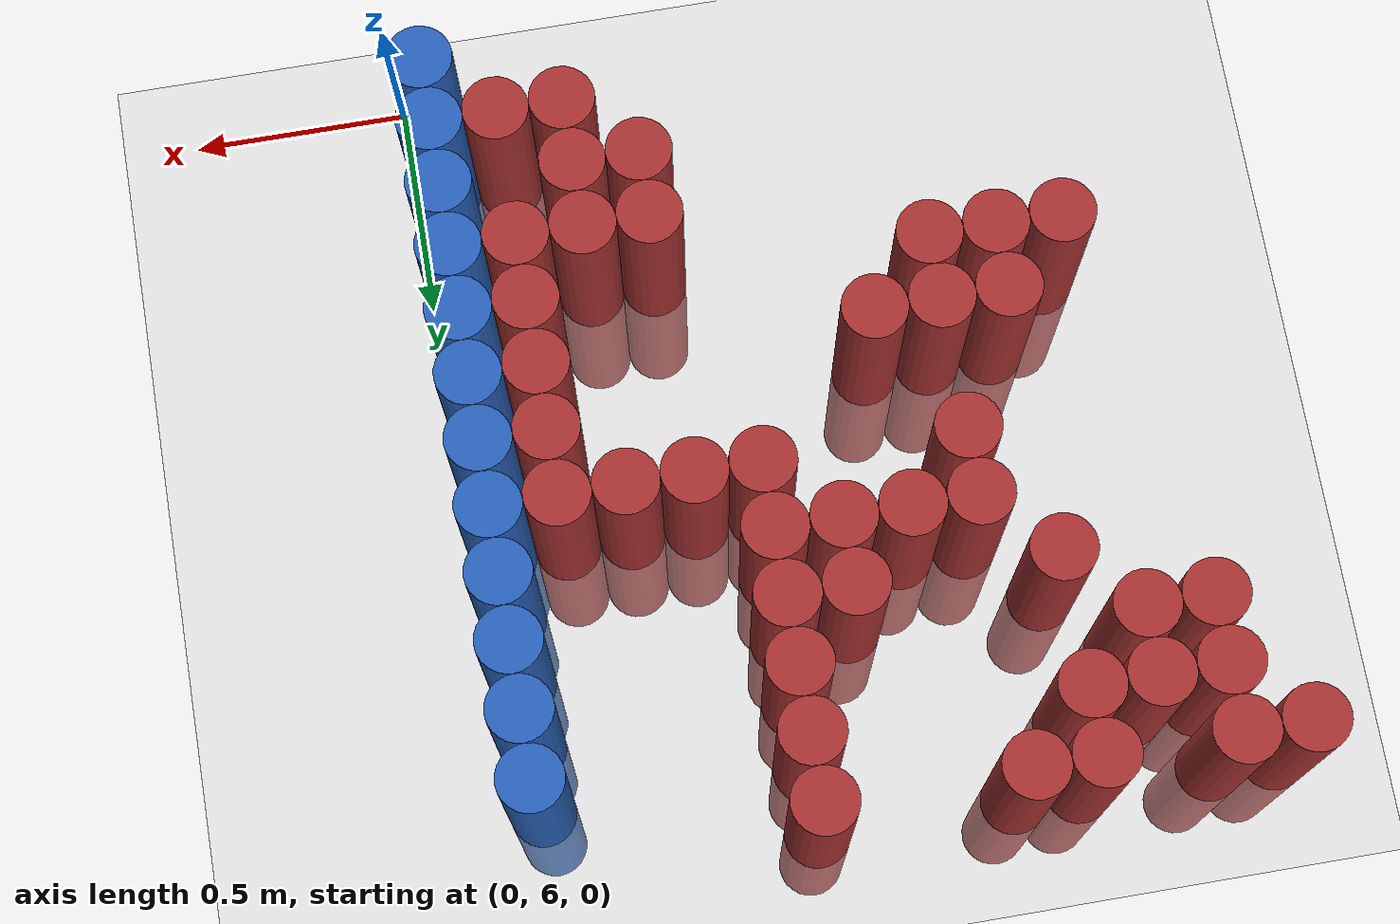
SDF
<sdf version="1.6">
 <world name="default">
  <model name="ground_plane">
   <static>1</static>
   <link name="link">
    <collision name="collision">
     <geometry><plane><normal>0 0 1</normal><size>100 100</size></plane></geometry>
     <surface><friction><ode><mu>100</mu><mu2>50</mu2></ode></friction></surface>
    </collision>
    <visual name="visual">
     <cast_shadows>0</cast_shadows>
     <geometry><plane><normal>0 0 1</normal><size>100 100</size></plane></geometry>
     <material>
      <script><uri>file://media/materials/scripts/gazebo.material</uri><name>Gazebo/Grey</name></script>
     </material>
    </visual>
   </link>
  </model>
  <model name="unit_cylinder_246">
   <static>1</static>
   <pose>-1.725000 7.875000 0.000000 0.000000 0.000000 0.000000</pose>
   <link name="link">
    <inertial>
     <mass>1</mass>
     <inertia><ixx>0.145833</ixx><ixy>0</ixy><ixz>0</ixz><iyy>0.145833</iyy><iyz>0</iyz><izz>0.125</izz></inertia>
    </inertial>
    <collision name="collision">
     <geometry><cylinder><radius>0.075000</radius><length>1</length></cylinder></geometry>
    </collision>
    <visual name="visual">
     <geometry><cylinder><radius>0.075000</radius><length>1</length></cylinder></geometry>
     <material>
      <ambient>0.648000 0.192000 0.192000 1</ambient>
      <diffuse>0.648000 0.192000 0.192000 1</diffuse>
     </material>
     <material>
      <script><name>Gazebo/Grey</name><uri>file://media/materials/scripts/gazebo.material</uri></script>
     </material>
    </visual>
   </link>
  </model>
  <model name="unit_cylinder_251">
   <static>1</static>
   <pose>-1.575000 7.575000 0.000000 0.000000 0.000000 0.000000</pose>
   <link name="link">
    <inertial>
     <mass>1</mass>
     <inertia><ixx>0.145833</ixx><ixy>0</ixy><ixz>0</ixz><iyy>0.145833</iyy><iyz>0</iyz><izz>0.125</izz></inertia>
    </inertial>
    <collision name="collision">
     <geometry><cylinder><radius>0.075000</radius><length>1</length></cylinder></geometry>
    </collision>
    <visual name="visual">
     <geometry><cylinder><radius>0.075000</radius><length>1</length></cylinder></geometry>
     <material>
      <ambient>0.648000 0.192000 0.192000 1</ambient>
      <diffuse>0.648000 0.192000 0.192000 1</diffuse>
     </material>
     <material>
      <script><name>Gazebo/Grey</name><uri>file://media/materials/scripts/gazebo.material</uri></script>
     </material>
    </visual>
   </link>
  </model>
  <model name="unit_cylinder_252">
   <static>1</static>
   <pose>-1.575000 7.725000 0.000000 0.000000 0.000000 0.000000</pose>
   <link name="link">
    <inertial>
     <mass>1</mass>
     <inertia><ixx>0.145833</ixx><ixy>0</ixy><ixz>0</ixz><iyy>0.145833</iyy><iyz>0</iyz><izz>0.125</izz></inertia>
    </inertial>
    <collision name="collision">
     <geometry><cylinder><radius>0.075000</radius><length>1</length></cylinder></geometry>
    </collision>
    <visual name="visual">
     <geometry><cylinder><radius>0.075000</radius><length>1</length></cylinder></geometry>
     <material>
      <ambient>0.648000 0.192000 0.192000 1</ambient>
      <diffuse>0.648000 0.192000 0.192000 1</diffuse>
     </material>
     <material>
      <script><name>Gazebo/Grey</name><uri>file://media/materials/scripts/gazebo.material</uri></script>
     </material>
    </visual>
   </link>
  </model>
  <model name="unit_cylinder_253">
   <static>1</static>
   <pose>-1.575000 7.875000 0.000000 0.000000 0.000000 0.000000</pose>
   <link name="link">
    <inertial>
     <mass>1</mass>
     <inertia><ixx>0.145833</ixx><ixy>0</ixy><ixz>0</ixz><iyy>0.145833</iyy><iyz>0</iyz><izz>0.125</izz></inertia>
    </inertial>
    <collision name="collision">
     <geometry><cylinder><radius>0.075000</radius><length>1</length></cylinder></geometry>
    </collision>
    <visual name="visual">
     <geometry><cylinder><radius>0.075000</radius><length>1</length></cylinder></geometry>
     <material>
      <ambient>0.648000 0.192000 0.192000 1</ambient>
      <diffuse>0.648000 0.192000 0.192000 1</diffuse>
     </material>
     <material>
      <script><name>Gazebo/Grey</name><uri>file://media/materials/scripts/gazebo.material</uri></script>
     </material>
    </visual>
   </link>
  </model>
  <model name="unit_cylinder_256">
   <static>1</static>
   <pose>-1.425000 6.675000 0.000000 0.000000 0.000000 0.000000</pose>
   <link name="link">
    <inertial>
     <mass>1</mass>
     <inertia><ixx>0.145833</ixx><ixy>0</ixy><ixz>0</ixz><iyy>0.145833</iyy><iyz>0</iyz><izz>0.125</izz></inertia>
    </inertial>
    <collision name="collision">
     <geometry><cylinder><radius>0.075000</radius><length>1</length></cylinder></geometry>
    </collision>
    <visual name="visual">
     <geometry><cylinder><radius>0.075000</radius><length>1</length></cylinder></geometry>
     <material>
      <ambient>0.648000 0.192000 0.192000 1</ambient>
      <diffuse>0.648000 0.192000 0.192000 1</diffuse>
     </material>
     <material>
      <script><name>Gazebo/Grey</name><uri>file://media/materials/scripts/gazebo.material</uri></script>
     </material>
    </visual>
   </link>
  </model>
  <model name="unit_cylinder_257">
   <static>1</static>
   <pose>-1.425000 7.575000 0.000000 0.000000 0.000000 0.000000</pose>
   <link name="link">
    <inertial>
     <mass>1</mass>
     <inertia><ixx>0.145833</ixx><ixy>0</ixy><ixz>0</ixz><iyy>0.145833</iyy><iyz>0</iyz><izz>0.125</izz></inertia>
    </inertial>
    <collision name="collision">
     <geometry><cylinder><radius>0.075000</radius><length>1</length></cylinder></geometry>
    </collision>
    <visual name="visual">
     <geometry><cylinder><radius>0.075000</radius><length>1</length></cylinder></geometry>
     <material>
      <ambient>0.648000 0.192000 0.192000 1</ambient>
      <diffuse>0.648000 0.192000 0.192000 1</diffuse>
     </material>
     <material>
      <script><name>Gazebo/Grey</name><uri>file://media/materials/scripts/gazebo.material</uri></script>
     </material>
    </visual>
   </link>
  </model>
  <model name="unit_cylinder_258">
   <static>1</static>
   <pose>-1.425000 7.725000 0.000000 0.000000 0.000000 0.000000</pose>
   <link name="link">
    <inertial>
     <mass>1</mass>
     <inertia><ixx>0.145833</ixx><ixy>0</ixy><ixz>0</ixz><iyy>0.145833</iyy><iyz>0</iyz><izz>0.125</izz></inertia>
    </inertial>
    <collision name="collision">
     <geometry><cylinder><radius>0.075000</radius><length>1</length></cylinder></geometry>
    </collision>
    <visual name="visual">
     <geometry><cylinder><radius>0.075000</radius><length>1</length></cylinder></geometry>
     <material>
      <ambient>0.648000 0.192000 0.192000 1</ambient>
      <diffuse>0.648000 0.192000 0.192000 1</diffuse>
     </material>
     <material>
      <script><name>Gazebo/Grey</name><uri>file://media/materials/scripts/gazebo.material</uri></script>
     </material>
    </visual>
   </link>
  </model>
  <model name="unit_cylinder_260">
   <static>1</static>
   <pose>-1.275000 6.675000 0.000000 0.000000 0.000000 0.000000</pose>
   <link name="link">
    <inertial>
     <mass>1</mass>
     <inertia><ixx>0.145833</ixx><ixy>0</ixy><ixz>0</ixz><iyy>0.145833</iyy><iyz>0</iyz><izz>0.125</izz></inertia>
    </inertial>
    <collision name="collision">
     <geometry><cylinder><radius>0.075000</radius><length>1</length></cylinder></geometry>
    </collision>
    <visual name="visual">
     <geometry><cylinder><radius>0.075000</radius><length>1</length></cylinder></geometry>
     <material>
      <ambient>0.648000 0.192000 0.192000 1</ambient>
      <diffuse>0.648000 0.192000 0.192000 1</diffuse>
     </material>
     <material>
      <script><name>Gazebo/Grey</name><uri>file://media/materials/scripts/gazebo.material</uri></script>
     </material>
    </visual>
   </link>
  </model>
  <model name="unit_cylinder_261">
   <static>1</static>
   <pose>-1.275000 6.825000 0.000000 0.000000 0.000000 0.000000</pose>
   <link name="link">
    <inertial>
     <mass>1</mass>
     <inertia><ixx>0.145833</ixx><ixy>0</ixy><ixz>0</ixz><iyy>0.145833</iyy><iyz>0</iyz><izz>0.125</izz></inertia>
    </inertial>
    <collision name="collision">
     <geometry><cylinder><radius>0.075000</radius><length>1</length></cylinder></geometry>
    </collision>
    <visual name="visual">
     <geometry><cylinder><radius>0.075000</radius><length>1</length></cylinder></geometry>
     <material>
      <ambient>0.648000 0.192000 0.192000 1</ambient>
      <diffuse>0.648000 0.192000 0.192000 1</diffuse>
     </material>
     <material>
      <script><name>Gazebo/Grey</name><uri>file://media/materials/scripts/gazebo.material</uri></script>
     </material>
    </visual>
   </link>
  </model>
  <model name="unit_cylinder_262">
   <static>1</static>
   <pose>-1.275000 7.425000 0.000000 0.000000 0.000000 0.000000</pose>
   <link name="link">
    <inertial>
     <mass>1</mass>
     <inertia><ixx>0.145833</ixx><ixy>0</ixy><ixz>0</ixz><iyy>0.145833</iyy><iyz>0</iyz><izz>0.125</izz></inertia>
    </inertial>
    <collision name="collision">
     <geometry><cylinder><radius>0.075000</radius><length>1</length></cylinder></geometry>
    </collision>
    <visual name="visual">
     <geometry><cylinder><radius>0.075000</radius><length>1</length></cylinder></geometry>
     <material>
      <ambient>0.648000 0.192000 0.192000 1</ambient>
      <diffuse>0.648000 0.192000 0.192000 1</diffuse>
     </material>
     <material>
      <script><name>Gazebo/Grey</name><uri>file://media/materials/scripts/gazebo.material</uri></script>
     </material>
    </visual>
   </link>
  </model>
  <model name="unit_cylinder_263">
   <static>1</static>
   <pose>-1.275000 7.725000 0.000000 0.000000 0.000000 0.000000</pose>
   <link name="link">
    <inertial>
     <mass>1</mass>
     <inertia><ixx>0.145833</ixx><ixy>0</ixy><ixz>0</ixz><iyy>0.145833</iyy><iyz>0</iyz><izz>0.125</izz></inertia>
    </inertial>
    <collision name="collision">
     <geometry><cylinder><radius>0.075000</radius><length>1</length></cylinder></geometry>
    </collision>
    <visual name="visual">
     <geometry><cylinder><radius>0.075000</radius><length>1</length></cylinder></geometry>
     <material>
      <ambient>0.648000 0.192000 0.192000 1</ambient>
      <diffuse>0.648000 0.192000 0.192000 1</diffuse>
     </material>
     <material>
      <script><name>Gazebo/Grey</name><uri>file://media/materials/scripts/gazebo.material</uri></script>
     </material>
    </visual>
   </link>
  </model>
  <model name="unit_cylinder_264">
   <static>1</static>
   <pose>-1.275000 7.875000 0.000000 0.000000 0.000000 0.000000</pose>
   <link name="link">
    <inertial>
     <mass>1</mass>
     <inertia><ixx>0.145833</ixx><ixy>0</ixy><ixz>0</ixz><iyy>0.145833</iyy><iyz>0</iyz><izz>0.125</izz></inertia>
    </inertial>
    <collision name="collision">
     <geometry><cylinder><radius>0.075000</radius><length>1</length></cylinder></geometry>
    </collision>
    <visual name="visual">
     <geometry><cylinder><radius>0.075000</radius><length>1</length></cylinder></geometry>
     <material>
      <ambient>0.648000 0.192000 0.192000 1</ambient>
      <diffuse>0.648000 0.192000 0.192000 1</diffuse>
     </material>
     <material>
      <script><name>Gazebo/Grey</name><uri>file://media/materials/scripts/gazebo.material</uri></script>
     </material>
    </visual>
   </link>
  </model>
  <model name="unit_cylinder_268">
   <static>1</static>
   <pose>-1.125000 6.675000 0.000000 0.000000 0.000000 0.000000</pose>
   <link name="link">
    <inertial>
     <mass>1</mass>
     <inertia><ixx>0.145833</ixx><ixy>0</ixy><ixz>0</ixz><iyy>0.145833</iyy><iyz>0</iyz><izz>0.125</izz></inertia>
    </inertial>
    <collision name="collision">
     <geometry><cylinder><radius>0.075000</radius><length>1</length></cylinder></geometry>
    </collision>
    <visual name="visual">
     <geometry><cylinder><radius>0.075000</radius><length>1</length></cylinder></geometry>
     <material>
      <ambient>0.648000 0.192000 0.192000 1</ambient>
      <diffuse>0.648000 0.192000 0.192000 1</diffuse>
     </material>
     <material>
      <script><name>Gazebo/Grey</name><uri>file://media/materials/scripts/gazebo.material</uri></script>
     </material>
    </visual>
   </link>
  </model>
  <model name="unit_cylinder_269">
   <static>1</static>
   <pose>-1.125000 6.825000 0.000000 0.000000 0.000000 0.000000</pose>
   <link name="link">
    <inertial>
     <mass>1</mass>
     <inertia><ixx>0.145833</ixx><ixy>0</ixy><ixz>0</ixz><iyy>0.145833</iyy><iyz>0</iyz><izz>0.125</izz></inertia>
    </inertial>
    <collision name="collision">
     <geometry><cylinder><radius>0.075000</radius><length>1</length></cylinder></geometry>
    </collision>
    <visual name="visual">
     <geometry><cylinder><radius>0.075000</radius><length>1</length></cylinder></geometry>
     <material>
      <ambient>0.648000 0.192000 0.192000 1</ambient>
      <diffuse>0.648000 0.192000 0.192000 1</diffuse>
     </material>
     <material>
      <script><name>Gazebo/Grey</name><uri>file://media/materials/scripts/gazebo.material</uri></script>
     </material>
    </visual>
   </link>
  </model>
  <model name="unit_cylinder_270">
   <static>1</static>
   <pose>-1.125000 7.125000 0.000000 0.000000 0.000000 0.000000</pose>
   <link name="link">
    <inertial>
     <mass>1</mass>
     <inertia><ixx>0.145833</ixx><ixy>0</ixy><ixz>0</ixz><iyy>0.145833</iyy><iyz>0</iyz><izz>0.125</izz></inertia>
    </inertial>
    <collision name="collision">
     <geometry><cylinder><radius>0.075000</radius><length>1</length></cylinder></geometry>
    </collision>
    <visual name="visual">
     <geometry><cylinder><radius>0.075000</radius><length>1</length></cylinder></geometry>
     <material>
      <ambient>0.648000 0.192000 0.192000 1</ambient>
      <diffuse>0.648000 0.192000 0.192000 1</diffuse>
     </material>
     <material>
      <script><name>Gazebo/Grey</name><uri>file://media/materials/scripts/gazebo.material</uri></script>
     </material>
    </visual>
   </link>
  </model>
  <model name="unit_cylinder_271">
   <static>1</static>
   <pose>-1.125000 7.275000 0.000000 0.000000 0.000000 0.000000</pose>
   <link name="link">
    <inertial>
     <mass>1</mass>
     <inertia><ixx>0.145833</ixx><ixy>0</ixy><ixz>0</ixz><iyy>0.145833</iyy><iyz>0</iyz><izz>0.125</izz></inertia>
    </inertial>
    <collision name="collision">
     <geometry><cylinder><radius>0.075000</radius><length>1</length></cylinder></geometry>
    </collision>
    <visual name="visual">
     <geometry><cylinder><radius>0.075000</radius><length>1</length></cylinder></geometry>
     <material>
      <ambient>0.648000 0.192000 0.192000 1</ambient>
      <diffuse>0.648000 0.192000 0.192000 1</diffuse>
     </material>
     <material>
      <script><name>Gazebo/Grey</name><uri>file://media/materials/scripts/gazebo.material</uri></script>
     </material>
    </visual>
   </link>
  </model>
  <model name="unit_cylinder_272">
   <static>1</static>
   <pose>-1.125000 7.875000 0.000000 0.000000 0.000000 0.000000</pose>
   <link name="link">
    <inertial>
     <mass>1</mass>
     <inertia><ixx>0.145833</ixx><ixy>0</ixy><ixz>0</ixz><iyy>0.145833</iyy><iyz>0</iyz><izz>0.125</izz></inertia>
    </inertial>
    <collision name="collision">
     <geometry><cylinder><radius>0.075000</radius><length>1</length></cylinder></geometry>
    </collision>
    <visual name="visual">
     <geometry><cylinder><radius>0.075000</radius><length>1</length></cylinder></geometry>
     <material>
      <ambient>0.648000 0.192000 0.192000 1</ambient>
      <diffuse>0.648000 0.192000 0.192000 1</diffuse>
     </material>
     <material>
      <script><name>Gazebo/Grey</name><uri>file://media/materials/scripts/gazebo.material</uri></script>
     </material>
    </visual>
   </link>
  </model>
  <model name="unit_cylinder_277">
   <static>1</static>
   <pose>-0.975000 6.825000 0.000000 0.000000 0.000000 0.000000</pose>
   <link name="link">
    <inertial>
     <mass>1</mass>
     <inertia><ixx>0.145833</ixx><ixy>0</ixy><ixz>0</ixz><iyy>0.145833</iyy><iyz>0</iyz><izz>0.125</izz></inertia>
    </inertial>
    <collision name="collision">
     <geometry><cylinder><radius>0.075000</radius><length>1</length></cylinder></geometry>
    </collision>
    <visual name="visual">
     <geometry><cylinder><radius>0.075000</radius><length>1</length></cylinder></geometry>
     <material>
      <ambient>0.648000 0.192000 0.192000 1</ambient>
      <diffuse>0.648000 0.192000 0.192000 1</diffuse>
     </material>
     <material>
      <script><name>Gazebo/Grey</name><uri>file://media/materials/scripts/gazebo.material</uri></script>
     </material>
    </visual>
   </link>
  </model>
  <model name="unit_cylinder_278">
   <static>1</static>
   <pose>-0.975000 7.275000 0.000000 0.000000 0.000000 0.000000</pose>
   <link name="link">
    <inertial>
     <mass>1</mass>
     <inertia><ixx>0.145833</ixx><ixy>0</ixy><ixz>0</ixz><iyy>0.145833</iyy><iyz>0</iyz><izz>0.125</izz></inertia>
    </inertial>
    <collision name="collision">
     <geometry><cylinder><radius>0.075000</radius><length>1</length></cylinder></geometry>
    </collision>
    <visual name="visual">
     <geometry><cylinder><radius>0.075000</radius><length>1</length></cylinder></geometry>
     <material>
      <ambient>0.648000 0.192000 0.192000 1</ambient>
      <diffuse>0.648000 0.192000 0.192000 1</diffuse>
     </material>
     <material>
      <script><name>Gazebo/Grey</name><uri>file://media/materials/scripts/gazebo.material</uri></script>
     </material>
    </visual>
   </link>
  </model>
  <model name="unit_cylinder_282">
   <static>1</static>
   <pose>-0.825000 7.275000 0.000000 0.000000 0.000000 0.000000</pose>
   <link name="link">
    <inertial>
     <mass>1</mass>
     <inertia><ixx>0.145833</ixx><ixy>0</ixy><ixz>0</ixz><iyy>0.145833</iyy><iyz>0</iyz><izz>0.125</izz></inertia>
    </inertial>
    <collision name="collision">
     <geometry><cylinder><radius>0.075000</radius><length>1</length></cylinder></geometry>
    </collision>
    <visual name="visual">
     <geometry><cylinder><radius>0.075000</radius><length>1</length></cylinder></geometry>
     <material>
      <ambient>0.648000 0.192000 0.192000 1</ambient>
      <diffuse>0.648000 0.192000 0.192000 1</diffuse>
     </material>
     <material>
      <script><name>Gazebo/Grey</name><uri>file://media/materials/scripts/gazebo.material</uri></script>
     </material>
    </visual>
   </link>
  </model>
  <model name="unit_cylinder_283">
   <static>1</static>
   <pose>-0.825000 7.425000 0.000000 0.000000 0.000000 0.000000</pose>
   <link name="link">
    <inertial>
     <mass>1</mass>
     <inertia><ixx>0.145833</ixx><ixy>0</ixy><ixz>0</ixz><iyy>0.145833</iyy><iyz>0</iyz><izz>0.125</izz></inertia>
    </inertial>
    <collision name="collision">
     <geometry><cylinder><radius>0.075000</radius><length>1</length></cylinder></geometry>
    </collision>
    <visual name="visual">
     <geometry><cylinder><radius>0.075000</radius><length>1</length></cylinder></geometry>
     <material>
      <ambient>0.648000 0.192000 0.192000 1</ambient>
      <diffuse>0.648000 0.192000 0.192000 1</diffuse>
     </material>
     <material>
      <script><name>Gazebo/Grey</name><uri>file://media/materials/scripts/gazebo.material</uri></script>
     </material>
    </visual>
   </link>
  </model>
  <model name="unit_cylinder_289">
   <static>1</static>
   <pose>-0.675000 7.125000 0.000000 0.000000 0.000000 0.000000</pose>
   <link name="link">
    <inertial>
     <mass>1</mass>
     <inertia><ixx>0.145833</ixx><ixy>0</ixy><ixz>0</ixz><iyy>0.145833</iyy><iyz>0</iyz><izz>0.125</izz></inertia>
    </inertial>
    <collision name="collision">
     <geometry><cylinder><radius>0.075000</radius><length>1</length></cylinder></geometry>
    </collision>
    <visual name="visual">
     <geometry><cylinder><radius>0.075000</radius><length>1</length></cylinder></geometry>
     <material>
      <ambient>0.648000 0.192000 0.192000 1</ambient>
      <diffuse>0.648000 0.192000 0.192000 1</diffuse>
     </material>
     <material>
      <script><name>Gazebo/Grey</name><uri>file://media/materials/scripts/gazebo.material</uri></script>
     </material>
    </visual>
   </link>
  </model>
  <model name="unit_cylinder_290">
   <static>1</static>
   <pose>-0.675000 7.275000 0.000000 0.000000 0.000000 0.000000</pose>
   <link name="link">
    <inertial>
     <mass>1</mass>
     <inertia><ixx>0.145833</ixx><ixy>0</ixy><ixz>0</ixz><iyy>0.145833</iyy><iyz>0</iyz><izz>0.125</izz></inertia>
    </inertial>
    <collision name="collision">
     <geometry><cylinder><radius>0.075000</radius><length>1</length></cylinder></geometry>
    </collision>
    <visual name="visual">
     <geometry><cylinder><radius>0.075000</radius><length>1</length></cylinder></geometry>
     <material>
      <ambient>0.648000 0.192000 0.192000 1</ambient>
      <diffuse>0.648000 0.192000 0.192000 1</diffuse>
     </material>
     <material>
      <script><name>Gazebo/Grey</name><uri>file://media/materials/scripts/gazebo.material</uri></script>
     </material>
    </visual>
   </link>
  </model>
  <model name="unit_cylinder_291">
   <static>1</static>
   <pose>-0.675000 7.425000 0.000000 0.000000 0.000000 0.000000</pose>
   <link name="link">
    <inertial>
     <mass>1</mass>
     <inertia><ixx>0.145833</ixx><ixy>0</ixy><ixz>0</ixz><iyy>0.145833</iyy><iyz>0</iyz><izz>0.125</izz></inertia>
    </inertial>
    <collision name="collision">
     <geometry><cylinder><radius>0.075000</radius><length>1</length></cylinder></geometry>
    </collision>
    <visual name="visual">
     <geometry><cylinder><radius>0.075000</radius><length>1</length></cylinder></geometry>
     <material>
      <ambient>0.648000 0.192000 0.192000 1</ambient>
      <diffuse>0.648000 0.192000 0.192000 1</diffuse>
     </material>
     <material>
      <script><name>Gazebo/Grey</name><uri>file://media/materials/scripts/gazebo.material</uri></script>
     </material>
    </visual>
   </link>
  </model>
  <model name="unit_cylinder_292">
   <static>1</static>
   <pose>-0.675000 7.575000 0.000000 0.000000 0.000000 0.000000</pose>
   <link name="link">
    <inertial>
     <mass>1</mass>
     <inertia><ixx>0.145833</ixx><ixy>0</ixy><ixz>0</ixz><iyy>0.145833</iyy><iyz>0</iyz><izz>0.125</izz></inertia>
    </inertial>
    <collision name="collision">
     <geometry><cylinder><radius>0.075000</radius><length>1</length></cylinder></geometry>
    </collision>
    <visual name="visual">
     <geometry><cylinder><radius>0.075000</radius><length>1</length></cylinder></geometry>
     <material>
      <ambient>0.648000 0.192000 0.192000 1</ambient>
      <diffuse>0.648000 0.192000 0.192000 1</diffuse>
     </material>
     <material>
      <script><name>Gazebo/Grey</name><uri>file://media/materials/scripts/gazebo.material</uri></script>
     </material>
    </visual>
   </link>
  </model>
  <model name="unit_cylinder_293">
   <static>1</static>
   <pose>-0.675000 7.725000 0.000000 0.000000 0.000000 0.000000</pose>
   <link name="link">
    <inertial>
     <mass>1</mass>
     <inertia><ixx>0.145833</ixx><ixy>0</ixy><ixz>0</ixz><iyy>0.145833</iyy><iyz>0</iyz><izz>0.125</izz></inertia>
    </inertial>
    <collision name="collision">
     <geometry><cylinder><radius>0.075000</radius><length>1</length></cylinder></geometry>
    </collision>
    <visual name="visual">
     <geometry><cylinder><radius>0.075000</radius><length>1</length></cylinder></geometry>
     <material>
      <ambient>0.648000 0.192000 0.192000 1</ambient>
      <diffuse>0.648000 0.192000 0.192000 1</diffuse>
     </material>
     <material>
      <script><name>Gazebo/Grey</name><uri>file://media/materials/scripts/gazebo.material</uri></script>
     </material>
    </visual>
   </link>
  </model>
  <model name="unit_cylinder_294">
   <static>1</static>
   <pose>-0.675000 7.875000 0.000000 0.000000 0.000000 0.000000</pose>
   <link name="link">
    <inertial>
     <mass>1</mass>
     <inertia><ixx>0.145833</ixx><ixy>0</ixy><ixz>0</ixz><iyy>0.145833</iyy><iyz>0</iyz><izz>0.125</izz></inertia>
    </inertial>
    <collision name="collision">
     <geometry><cylinder><radius>0.075000</radius><length>1</length></cylinder></geometry>
    </collision>
    <visual name="visual">
     <geometry><cylinder><radius>0.075000</radius><length>1</length></cylinder></geometry>
     <material>
      <ambient>0.648000 0.192000 0.192000 1</ambient>
      <diffuse>0.648000 0.192000 0.192000 1</diffuse>
     </material>
     <material>
      <script><name>Gazebo/Grey</name><uri>file://media/materials/scripts/gazebo.material</uri></script>
     </material>
    </visual>
   </link>
  </model>
  <model name="unit_cylinder_301">
   <static>1</static>
   <pose>-0.525000 6.375000 0.000000 0.000000 0.000000 0.000000</pose>
   <link name="link">
    <inertial>
     <mass>1</mass>
     <inertia><ixx>0.145833</ixx><ixy>0</ixy><ixz>0</ixz><iyy>0.145833</iyy><iyz>0</iyz><izz>0.125</izz></inertia>
    </inertial>
    <collision name="collision">
     <geometry><cylinder><radius>0.075000</radius><length>1</length></cylinder></geometry>
    </collision>
    <visual name="visual">
     <geometry><cylinder><radius>0.075000</radius><length>1</length></cylinder></geometry>
     <material>
      <ambient>0.648000 0.192000 0.192000 1</ambient>
      <diffuse>0.648000 0.192000 0.192000 1</diffuse>
     </material>
     <material>
      <script><name>Gazebo/Grey</name><uri>file://media/materials/scripts/gazebo.material</uri></script>
     </material>
    </visual>
   </link>
  </model>
  <model name="unit_cylinder_302">
   <static>1</static>
   <pose>-0.525000 6.525000 0.000000 0.000000 0.000000 0.000000</pose>
   <link name="link">
    <inertial>
     <mass>1</mass>
     <inertia><ixx>0.145833</ixx><ixy>0</ixy><ixz>0</ixz><iyy>0.145833</iyy><iyz>0</iyz><izz>0.125</izz></inertia>
    </inertial>
    <collision name="collision">
     <geometry><cylinder><radius>0.075000</radius><length>1</length></cylinder></geometry>
    </collision>
    <visual name="visual">
     <geometry><cylinder><radius>0.075000</radius><length>1</length></cylinder></geometry>
     <material>
      <ambient>0.648000 0.192000 0.192000 1</ambient>
      <diffuse>0.648000 0.192000 0.192000 1</diffuse>
     </material>
     <material>
      <script><name>Gazebo/Grey</name><uri>file://media/materials/scripts/gazebo.material</uri></script>
     </material>
    </visual>
   </link>
  </model>
  <model name="unit_cylinder_303">
   <static>1</static>
   <pose>-0.525000 7.125000 0.000000 0.000000 0.000000 0.000000</pose>
   <link name="link">
    <inertial>
     <mass>1</mass>
     <inertia><ixx>0.145833</ixx><ixy>0</ixy><ixz>0</ixz><iyy>0.145833</iyy><iyz>0</iyz><izz>0.125</izz></inertia>
    </inertial>
    <collision name="collision">
     <geometry><cylinder><radius>0.075000</radius><length>1</length></cylinder></geometry>
    </collision>
    <visual name="visual">
     <geometry><cylinder><radius>0.075000</radius><length>1</length></cylinder></geometry>
     <material>
      <ambient>0.648000 0.192000 0.192000 1</ambient>
      <diffuse>0.648000 0.192000 0.192000 1</diffuse>
     </material>
     <material>
      <script><name>Gazebo/Grey</name><uri>file://media/materials/scripts/gazebo.material</uri></script>
     </material>
    </visual>
   </link>
  </model>
  <model name="unit_cylinder_311">
   <static>1</static>
   <pose>-0.375000 6.225000 0.000000 0.000000 0.000000 0.000000</pose>
   <link name="link">
    <inertial>
     <mass>1</mass>
     <inertia><ixx>0.145833</ixx><ixy>0</ixy><ixz>0</ixz><iyy>0.145833</iyy><iyz>0</iyz><izz>0.125</izz></inertia>
    </inertial>
    <collision name="collision">
     <geometry><cylinder><radius>0.075000</radius><length>1</length></cylinder></geometry>
    </collision>
    <visual name="visual">
     <geometry><cylinder><radius>0.075000</radius><length>1</length></cylinder></geometry>
     <material>
      <ambient>0.648000 0.192000 0.192000 1</ambient>
      <diffuse>0.648000 0.192000 0.192000 1</diffuse>
     </material>
     <material>
      <script><name>Gazebo/Grey</name><uri>file://media/materials/scripts/gazebo.material</uri></script>
     </material>
    </visual>
   </link>
  </model>
  <model name="unit_cylinder_312">
   <static>1</static>
   <pose>-0.375000 6.375000 0.000000 0.000000 0.000000 0.000000</pose>
   <link name="link">
    <inertial>
     <mass>1</mass>
     <inertia><ixx>0.145833</ixx><ixy>0</ixy><ixz>0</ixz><iyy>0.145833</iyy><iyz>0</iyz><izz>0.125</izz></inertia>
    </inertial>
    <collision name="collision">
     <geometry><cylinder><radius>0.075000</radius><length>1</length></cylinder></geometry>
    </collision>
    <visual name="visual">
     <geometry><cylinder><radius>0.075000</radius><length>1</length></cylinder></geometry>
     <material>
      <ambient>0.648000 0.192000 0.192000 1</ambient>
      <diffuse>0.648000 0.192000 0.192000 1</diffuse>
     </material>
     <material>
      <script><name>Gazebo/Grey</name><uri>file://media/materials/scripts/gazebo.material</uri></script>
     </material>
    </visual>
   </link>
  </model>
  <model name="unit_cylinder_313">
   <static>1</static>
   <pose>-0.375000 6.525000 0.000000 0.000000 0.000000 0.000000</pose>
   <link name="link">
    <inertial>
     <mass>1</mass>
     <inertia><ixx>0.145833</ixx><ixy>0</ixy><ixz>0</ixz><iyy>0.145833</iyy><iyz>0</iyz><izz>0.125</izz></inertia>
    </inertial>
    <collision name="collision">
     <geometry><cylinder><radius>0.075000</radius><length>1</length></cylinder></geometry>
    </collision>
    <visual name="visual">
     <geometry><cylinder><radius>0.075000</radius><length>1</length></cylinder></geometry>
     <material>
      <ambient>0.648000 0.192000 0.192000 1</ambient>
      <diffuse>0.648000 0.192000 0.192000 1</diffuse>
     </material>
     <material>
      <script><name>Gazebo/Grey</name><uri>file://media/materials/scripts/gazebo.material</uri></script>
     </material>
    </visual>
   </link>
  </model>
  <model name="unit_cylinder_314">
   <static>1</static>
   <pose>-0.375000 7.125000 0.000000 0.000000 0.000000 0.000000</pose>
   <link name="link">
    <inertial>
     <mass>1</mass>
     <inertia><ixx>0.145833</ixx><ixy>0</ixy><ixz>0</ixz><iyy>0.145833</iyy><iyz>0</iyz><izz>0.125</izz></inertia>
    </inertial>
    <collision name="collision">
     <geometry><cylinder><radius>0.075000</radius><length>1</length></cylinder></geometry>
    </collision>
    <visual name="visual">
     <geometry><cylinder><radius>0.075000</radius><length>1</length></cylinder></geometry>
     <material>
      <ambient>0.648000 0.192000 0.192000 1</ambient>
      <diffuse>0.648000 0.192000 0.192000 1</diffuse>
     </material>
     <material>
      <script><name>Gazebo/Grey</name><uri>file://media/materials/scripts/gazebo.material</uri></script>
     </material>
    </visual>
   </link>
  </model>
  <model name="unit_cylinder_323">
   <static>1</static>
   <pose>-0.225000 6.225000 0.000000 0.000000 0.000000 0.000000</pose>
   <link name="link">
    <inertial>
     <mass>1</mass>
     <inertia><ixx>0.145833</ixx><ixy>0</ixy><ixz>0</ixz><iyy>0.145833</iyy><iyz>0</iyz><izz>0.125</izz></inertia>
    </inertial>
    <collision name="collision">
     <geometry><cylinder><radius>0.075000</radius><length>1</length></cylinder></geometry>
    </collision>
    <visual name="visual">
     <geometry><cylinder><radius>0.075000</radius><length>1</length></cylinder></geometry>
     <material>
      <ambient>0.648000 0.192000 0.192000 1</ambient>
      <diffuse>0.648000 0.192000 0.192000 1</diffuse>
     </material>
     <material>
      <script><name>Gazebo/Grey</name><uri>file://media/materials/scripts/gazebo.material</uri></script>
     </material>
    </visual>
   </link>
  </model>
  <model name="unit_cylinder_324">
   <static>1</static>
   <pose>-0.225000 6.525000 0.000000 0.000000 0.000000 0.000000</pose>
   <link name="link">
    <inertial>
     <mass>1</mass>
     <inertia><ixx>0.145833</ixx><ixy>0</ixy><ixz>0</ixz><iyy>0.145833</iyy><iyz>0</iyz><izz>0.125</izz></inertia>
    </inertial>
    <collision name="collision">
     <geometry><cylinder><radius>0.075000</radius><length>1</length></cylinder></geometry>
    </collision>
    <visual name="visual">
     <geometry><cylinder><radius>0.075000</radius><length>1</length></cylinder></geometry>
     <material>
      <ambient>0.648000 0.192000 0.192000 1</ambient>
      <diffuse>0.648000 0.192000 0.192000 1</diffuse>
     </material>
     <material>
      <script><name>Gazebo/Grey</name><uri>file://media/materials/scripts/gazebo.material</uri></script>
     </material>
    </visual>
   </link>
  </model>
  <model name="unit_cylinder_325">
   <static>1</static>
   <pose>-0.225000 6.675000 0.000000 0.000000 0.000000 0.000000</pose>
   <link name="link">
    <inertial>
     <mass>1</mass>
     <inertia><ixx>0.145833</ixx><ixy>0</ixy><ixz>0</ixz><iyy>0.145833</iyy><iyz>0</iyz><izz>0.125</izz></inertia>
    </inertial>
    <collision name="collision">
     <geometry><cylinder><radius>0.075000</radius><length>1</length></cylinder></geometry>
    </collision>
    <visual name="visual">
     <geometry><cylinder><radius>0.075000</radius><length>1</length></cylinder></geometry>
     <material>
      <ambient>0.648000 0.192000 0.192000 1</ambient>
      <diffuse>0.648000 0.192000 0.192000 1</diffuse>
     </material>
     <material>
      <script><name>Gazebo/Grey</name><uri>file://media/materials/scripts/gazebo.material</uri></script>
     </material>
    </visual>
   </link>
  </model>
  <model name="unit_cylinder_326">
   <static>1</static>
   <pose>-0.225000 6.825000 0.000000 0.000000 0.000000 0.000000</pose>
   <link name="link">
    <inertial>
     <mass>1</mass>
     <inertia><ixx>0.145833</ixx><ixy>0</ixy><ixz>0</ixz><iyy>0.145833</iyy><iyz>0</iyz><izz>0.125</izz></inertia>
    </inertial>
    <collision name="collision">
     <geometry><cylinder><radius>0.075000</radius><length>1</length></cylinder></geometry>
    </collision>
    <visual name="visual">
     <geometry><cylinder><radius>0.075000</radius><length>1</length></cylinder></geometry>
     <material>
      <ambient>0.648000 0.192000 0.192000 1</ambient>
      <diffuse>0.648000 0.192000 0.192000 1</diffuse>
     </material>
     <material>
      <script><name>Gazebo/Grey</name><uri>file://media/materials/scripts/gazebo.material</uri></script>
     </material>
    </visual>
   </link>
  </model>
  <model name="unit_cylinder_327">
   <static>1</static>
   <pose>-0.225000 6.975000 0.000000 0.000000 0.000000 0.000000</pose>
   <link name="link">
    <inertial>
     <mass>1</mass>
     <inertia><ixx>0.145833</ixx><ixy>0</ixy><ixz>0</ixz><iyy>0.145833</iyy><iyz>0</iyz><izz>0.125</izz></inertia>
    </inertial>
    <collision name="collision">
     <geometry><cylinder><radius>0.075000</radius><length>1</length></cylinder></geometry>
    </collision>
    <visual name="visual">
     <geometry><cylinder><radius>0.075000</radius><length>1</length></cylinder></geometry>
     <material>
      <ambient>0.648000 0.192000 0.192000 1</ambient>
      <diffuse>0.648000 0.192000 0.192000 1</diffuse>
     </material>
     <material>
      <script><name>Gazebo/Grey</name><uri>file://media/materials/scripts/gazebo.material</uri></script>
     </material>
    </visual>
   </link>
  </model>
  <model name="unit_cylinder_328">
   <static>1</static>
   <pose>-0.225000 7.125000 0.000000 0.000000 0.000000 0.000000</pose>
   <link name="link">
    <inertial>
     <mass>1</mass>
     <inertia><ixx>0.145833</ixx><ixy>0</ixy><ixz>0</ixz><iyy>0.145833</iyy><iyz>0</iyz><izz>0.125</izz></inertia>
    </inertial>
    <collision name="collision">
     <geometry><cylinder><radius>0.075000</radius><length>1</length></cylinder></geometry>
    </collision>
    <visual name="visual">
     <geometry><cylinder><radius>0.075000</radius><length>1</length></cylinder></geometry>
     <material>
      <ambient>0.648000 0.192000 0.192000 1</ambient>
      <diffuse>0.648000 0.192000 0.192000 1</diffuse>
     </material>
     <material>
      <script><name>Gazebo/Grey</name><uri>file://media/materials/scripts/gazebo.material</uri></script>
     </material>
    </visual>
   </link>
  </model>
  <model name="unit_cylinder_342">
   <static>1</static>
   <pose>-0.075000 6.075000 0.000000 0.000000 0.000000 0.000000</pose>
   <link name="link">
    <inertial>
     <mass>1</mass>
     <inertia><ixx>0.145833</ixx><ixy>0</ixy><ixz>0</ixz><iyy>0.145833</iyy><iyz>0</iyz><izz>0.125</izz></inertia>
    </inertial>
    <collision name="collision">
     <geometry><cylinder><radius>0.075000</radius><length>1</length></cylinder></geometry>
    </collision>
    <visual name="visual">
     <geometry><cylinder><radius>0.075000</radius><length>1</length></cylinder></geometry>
     <material>
      <ambient>0.152000 0.379000 0.720000 1</ambient>
      <diffuse>0.152000 0.379000 0.720000 1</diffuse>
     </material>
     <material>
      <script><name>Gazebo/Grey</name><uri>file://media/materials/scripts/gazebo.material</uri></script>
     </material>
    </visual>
   </link>
  </model>
  <model name="unit_cylinder_343">
   <static>1</static>
   <pose>-0.075000 6.225000 0.000000 0.000000 0.000000 0.000000</pose>
   <link name="link">
    <inertial>
     <mass>1</mass>
     <inertia><ixx>0.145833</ixx><ixy>0</ixy><ixz>0</ixz><iyy>0.145833</iyy><iyz>0</iyz><izz>0.125</izz></inertia>
    </inertial>
    <collision name="collision">
     <geometry><cylinder><radius>0.075000</radius><length>1</length></cylinder></geometry>
    </collision>
    <visual name="visual">
     <geometry><cylinder><radius>0.075000</radius><length>1</length></cylinder></geometry>
     <material>
      <ambient>0.152000 0.379000 0.720000 1</ambient>
      <diffuse>0.152000 0.379000 0.720000 1</diffuse>
     </material>
     <material>
      <script><name>Gazebo/Grey</name><uri>file://media/materials/scripts/gazebo.material</uri></script>
     </material>
    </visual>
   </link>
  </model>
  <model name="unit_cylinder_344">
   <static>1</static>
   <pose>-0.075000 6.375000 0.000000 0.000000 0.000000 0.000000</pose>
   <link name="link">
    <inertial>
     <mass>1</mass>
     <inertia><ixx>0.145833</ixx><ixy>0</ixy><ixz>0</ixz><iyy>0.145833</iyy><iyz>0</iyz><izz>0.125</izz></inertia>
    </inertial>
    <collision name="collision">
     <geometry><cylinder><radius>0.075000</radius><length>1</length></cylinder></geometry>
    </collision>
    <visual name="visual">
     <geometry><cylinder><radius>0.075000</radius><length>1</length></cylinder></geometry>
     <material>
      <ambient>0.152000 0.379000 0.720000 1</ambient>
      <diffuse>0.152000 0.379000 0.720000 1</diffuse>
     </material>
     <material>
      <script><name>Gazebo/Grey</name><uri>file://media/materials/scripts/gazebo.material</uri></script>
     </material>
    </visual>
   </link>
  </model>
  <model name="unit_cylinder_345">
   <static>1</static>
   <pose>-0.075000 6.525000 0.000000 0.000000 0.000000 0.000000</pose>
   <link name="link">
    <inertial>
     <mass>1</mass>
     <inertia><ixx>0.145833</ixx><ixy>0</ixy><ixz>0</ixz><iyy>0.145833</iyy><iyz>0</iyz><izz>0.125</izz></inertia>
    </inertial>
    <collision name="collision">
     <geometry><cylinder><radius>0.075000</radius><length>1</length></cylinder></geometry>
    </collision>
    <visual name="visual">
     <geometry><cylinder><radius>0.075000</radius><length>1</length></cylinder></geometry>
     <material>
      <ambient>0.152000 0.379000 0.720000 1</ambient>
      <diffuse>0.152000 0.379000 0.720000 1</diffuse>
     </material>
     <material>
      <script><name>Gazebo/Grey</name><uri>file://media/materials/scripts/gazebo.material</uri></script>
     </material>
    </visual>
   </link>
  </model>
  <model name="unit_cylinder_346">
   <static>1</static>
   <pose>-0.075000 6.675000 0.000000 0.000000 0.000000 0.000000</pose>
   <link name="link">
    <inertial>
     <mass>1</mass>
     <inertia><ixx>0.145833</ixx><ixy>0</ixy><ixz>0</ixz><iyy>0.145833</iyy><iyz>0</iyz><izz>0.125</izz></inertia>
    </inertial>
    <collision name="collision">
     <geometry><cylinder><radius>0.075000</radius><length>1</length></cylinder></geometry>
    </collision>
    <visual name="visual">
     <geometry><cylinder><radius>0.075000</radius><length>1</length></cylinder></geometry>
     <material>
      <ambient>0.152000 0.379000 0.720000 1</ambient>
      <diffuse>0.152000 0.379000 0.720000 1</diffuse>
     </material>
     <material>
      <script><name>Gazebo/Grey</name><uri>file://media/materials/scripts/gazebo.material</uri></script>
     </material>
    </visual>
   </link>
  </model>
  <model name="unit_cylinder_347">
   <static>1</static>
   <pose>-0.075000 6.825000 0.000000 0.000000 0.000000 0.000000</pose>
   <link name="link">
    <inertial>
     <mass>1</mass>
     <inertia><ixx>0.145833</ixx><ixy>0</ixy><ixz>0</ixz><iyy>0.145833</iyy><iyz>0</iyz><izz>0.125</izz></inertia>
    </inertial>
    <collision name="collision">
     <geometry><cylinder><radius>0.075000</radius><length>1</length></cylinder></geometry>
    </collision>
    <visual name="visual">
     <geometry><cylinder><radius>0.075000</radius><length>1</length></cylinder></geometry>
     <material>
      <ambient>0.152000 0.379000 0.720000 1</ambient>
      <diffuse>0.152000 0.379000 0.720000 1</diffuse>
     </material>
     <material>
      <script><name>Gazebo/Grey</name><uri>file://media/materials/scripts/gazebo.material</uri></script>
     </material>
    </visual>
   </link>
  </model>
  <model name="unit_cylinder_348">
   <static>1</static>
   <pose>-0.075000 6.975000 0.000000 0.000000 0.000000 0.000000</pose>
   <link name="link">
    <inertial>
     <mass>1</mass>
     <inertia><ixx>0.145833</ixx><ixy>0</ixy><ixz>0</ixz><iyy>0.145833</iyy><iyz>0</iyz><izz>0.125</izz></inertia>
    </inertial>
    <collision name="collision">
     <geometry><cylinder><radius>0.075000</radius><length>1</length></cylinder></geometry>
    </collision>
    <visual name="visual">
     <geometry><cylinder><radius>0.075000</radius><length>1</length></cylinder></geometry>
     <material>
      <ambient>0.152000 0.379000 0.720000 1</ambient>
      <diffuse>0.152000 0.379000 0.720000 1</diffuse>
     </material>
     <material>
      <script><name>Gazebo/Grey</name><uri>file://media/materials/scripts/gazebo.material</uri></script>
     </material>
    </visual>
   </link>
  </model>
  <model name="unit_cylinder_349">
   <static>1</static>
   <pose>-0.075000 7.125000 0.000000 0.000000 0.000000 0.000000</pose>
   <link name="link">
    <inertial>
     <mass>1</mass>
     <inertia><ixx>0.145833</ixx><ixy>0</ixy><ixz>0</ixz><iyy>0.145833</iyy><iyz>0</iyz><izz>0.125</izz></inertia>
    </inertial>
    <collision name="collision">
     <geometry><cylinder><radius>0.075000</radius><length>1</length></cylinder></geometry>
    </collision>
    <visual name="visual">
     <geometry><cylinder><radius>0.075000</radius><length>1</length></cylinder></geometry>
     <material>
      <ambient>0.152000 0.379000 0.720000 1</ambient>
      <diffuse>0.152000 0.379000 0.720000 1</diffuse>
     </material>
     <material>
      <script><name>Gazebo/Grey</name><uri>file://media/materials/scripts/gazebo.material</uri></script>
     </material>
    </visual>
   </link>
  </model>
  <model name="unit_cylinder_350">
   <static>1</static>
   <pose>-0.075000 7.275000 0.000000 0.000000 0.000000 0.000000</pose>
   <link name="link">
    <inertial>
     <mass>1</mass>
     <inertia><ixx>0.145833</ixx><ixy>0</ixy><ixz>0</ixz><iyy>0.145833</iyy><iyz>0</iyz><izz>0.125</izz></inertia>
    </inertial>
    <collision name="collision">
     <geometry><cylinder><radius>0.075000</radius><length>1</length></cylinder></geometry>
    </collision>
    <visual name="visual">
     <geometry><cylinder><radius>0.075000</radius><length>1</length></cylinder></geometry>
     <material>
      <ambient>0.152000 0.379000 0.720000 1</ambient>
      <diffuse>0.152000 0.379000 0.720000 1</diffuse>
     </material>
     <material>
      <script><name>Gazebo/Grey</name><uri>file://media/materials/scripts/gazebo.material</uri></script>
     </material>
    </visual>
   </link>
  </model>
  <model name="unit_cylinder_351">
   <static>1</static>
   <pose>-0.075000 7.425000 0.000000 0.000000 0.000000 0.000000</pose>
   <link name="link">
    <inertial>
     <mass>1</mass>
     <inertia><ixx>0.145833</ixx><ixy>0</ixy><ixz>0</ixz><iyy>0.145833</iyy><iyz>0</iyz><izz>0.125</izz></inertia>
    </inertial>
    <collision name="collision">
     <geometry><cylinder><radius>0.075000</radius><length>1</length></cylinder></geometry>
    </collision>
    <visual name="visual">
     <geometry><cylinder><radius>0.075000</radius><length>1</length></cylinder></geometry>
     <material>
      <ambient>0.152000 0.379000 0.720000 1</ambient>
      <diffuse>0.152000 0.379000 0.720000 1</diffuse>
     </material>
     <material>
      <script><name>Gazebo/Grey</name><uri>file://media/materials/scripts/gazebo.material</uri></script>
     </material>
    </visual>
   </link>
  </model>
  <model name="unit_cylinder_352">
   <static>1</static>
   <pose>-0.075000 7.575000 0.000000 0.000000 0.000000 0.000000</pose>
   <link name="link">
    <inertial>
     <mass>1</mass>
     <inertia><ixx>0.145833</ixx><ixy>0</ixy><ixz>0</ixz><iyy>0.145833</iyy><iyz>0</iyz><izz>0.125</izz></inertia>
    </inertial>
    <collision name="collision">
     <geometry><cylinder><radius>0.075000</radius><length>1</length></cylinder></geometry>
    </collision>
    <visual name="visual">
     <geometry><cylinder><radius>0.075000</radius><length>1</length></cylinder></geometry>
     <material>
      <ambient>0.152000 0.379000 0.720000 1</ambient>
      <diffuse>0.152000 0.379000 0.720000 1</diffuse>
     </material>
     <material>
      <script><name>Gazebo/Grey</name><uri>file://media/materials/scripts/gazebo.material</uri></script>
     </material>
    </visual>
   </link>
  </model>
  <model name="unit_cylinder_353">
   <static>1</static>
   <pose>-0.075000 7.725000 0.000000 0.000000 0.000000 0.000000</pose>
   <link name="link">
    <inertial>
     <mass>1</mass>
     <inertia><ixx>0.145833</ixx><ixy>0</ixy><ixz>0</ixz><iyy>0.145833</iyy><iyz>0</iyz><izz>0.125</izz></inertia>
    </inertial>
    <collision name="collision">
     <geometry><cylinder><radius>0.075000</radius><length>1</length></cylinder></geometry>
    </collision>
    <visual name="visual">
     <geometry><cylinder><radius>0.075000</radius><length>1</length></cylinder></geometry>
     <material>
      <ambient>0.152000 0.379000 0.720000 1</ambient>
      <diffuse>0.152000 0.379000 0.720000 1</diffuse>
     </material>
     <material>
      <script><name>Gazebo/Grey</name><uri>file://media/materials/scripts/gazebo.material</uri></script>
     </material>
    </visual>
   </link>
  </model>
 </world>
</sdf>
